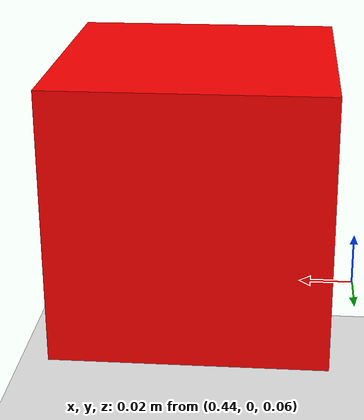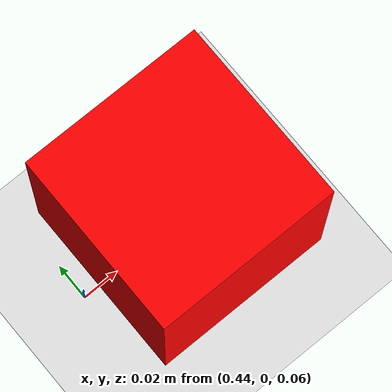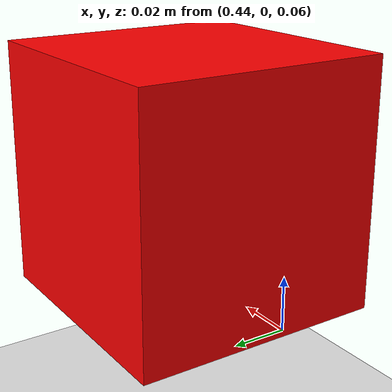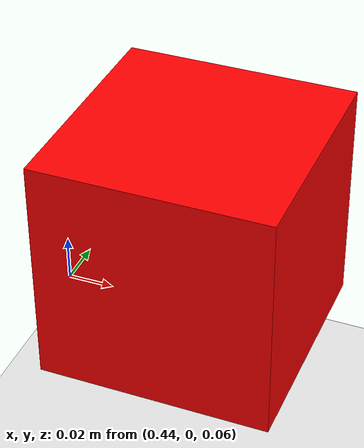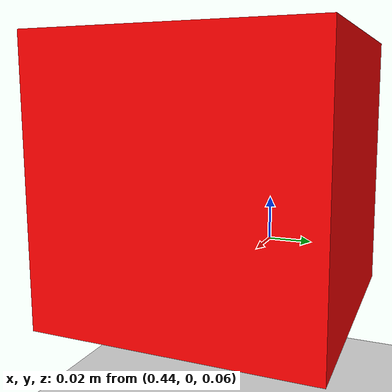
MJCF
<mujoco>
  <option timestep="0.001">
    <flag contact="enable" energy="enable"/>
  </option>

  <worldbody>
    <light diffuse=".5 .5 .5" pos="0 0 3" dir="0 0 -1"/>
    <geom name="floor" type="plane" size="1 1 0.1" rgba=".9 .9 .9 1"/>

    <body name="box" pos="0.5 0 0.1">
      <freejoint/>
      <geom type="box" size="0.05 0.05 0.05" mass="0.1" rgba="1 0 0 1"/>
    </body>
  </worldbody>
</mujoco>
